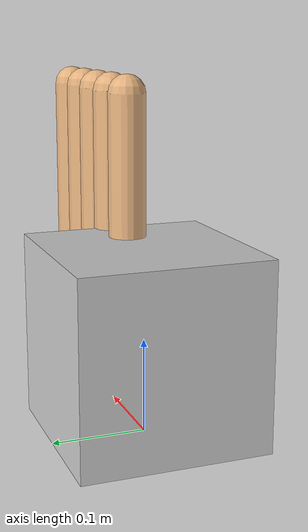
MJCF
<mujoco model="Simplified_MyoHand">
    <compiler angle="radian" inertiafromgeom="true"/>

    <asset>
        <!-- Simple shapes replacing complex meshes -->
        <material name="MatObject" rgba="0.9 0.7 0.5 1"/>
    </asset>

    <worldbody>
        <!-- Simplified base for hand -->
        <body name="hand_base" pos="0 0 0.1">
            <geom type="box" size="0.1 0.1 0.1" rgba="0.8 0.8 0.8 1"/>
            <joint name="hand_joint" type="free"/>

            <!-- Replace individual parts of the hand with basic shapes -->
            <body name="thumb" pos="0.05 0 0.15">
                <joint name="thumb_joint" type="hinge" axis="1 0 0" range="-1.57 1.57"/>
                <geom type="capsule" size="0.02 0.1" rgba="0.9 0.7 0.5 1"/>
            </body>

            <body name="index_finger" pos="0.1 0 0.15">
                <joint name="index_finger_joint" type="hinge" axis="1 0 0" range="-1.57 1.57"/>
                <geom type="capsule" size="0.02 0.1" rgba="0.9 0.7 0.5 1"/>
            </body>

            <body name="middle_finger" pos="0.15 0 0.15">
                <joint name="middle_finger_joint" type="hinge" axis="1 0 0" range="-1.57 1.57"/>
                <geom type="capsule" size="0.02 0.1" rgba="0.9 0.7 0.5 1"/>
            </body>

            <body name="ring_finger" pos="0.2 0 0.15">
                <joint name="ring_finger_joint" type="hinge" axis="1 0 0" range="-1.57 1.57"/>
                <geom type="capsule" size="0.02 0.1" rgba="0.9 0.7 0.5 1"/>
            </body>

            <body name="little_finger" pos="0.25 0 0.15">
                <joint name="little_finger_joint" type="hinge" axis="1 0 0" range="-1.57 1.57"/>
                <geom type="capsule" size="0.02 0.1" rgba="0.9 0.7 0.5 1"/>
            </body>
        </body>
    </worldbody>

    <actuator>
        <!-- Use actuators for individual finger joints as a substitute for tendons -->
        <position name="thumb_actuator" joint="thumb_joint" kp="100"/>
        <position name="index_finger_actuator" joint="index_finger_joint" kp="100"/>
        <position name="middle_finger_actuator" joint="middle_finger_joint" kp="100"/>
        <position name="ring_finger_actuator" joint="ring_finger_joint" kp="100"/>
        <position name="little_finger_actuator" joint="little_finger_joint" kp="100"/>
    </actuator>
</mujoco>
